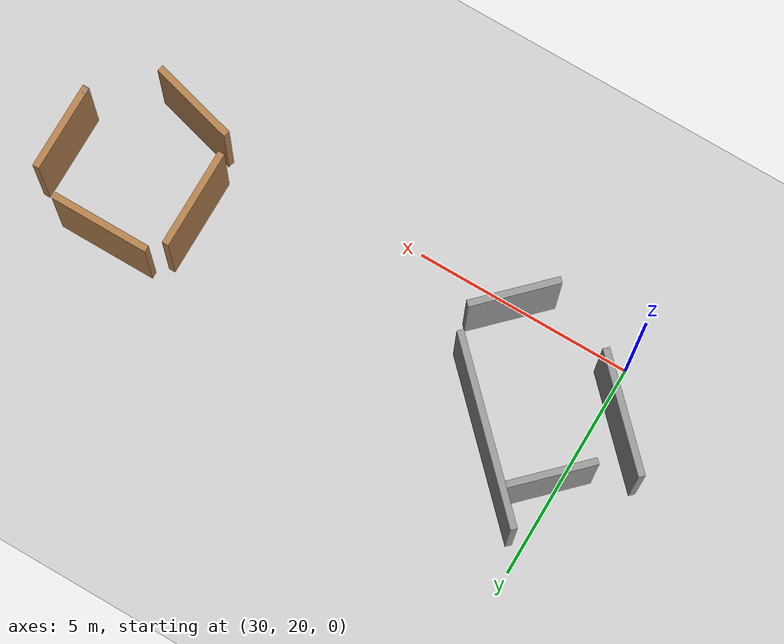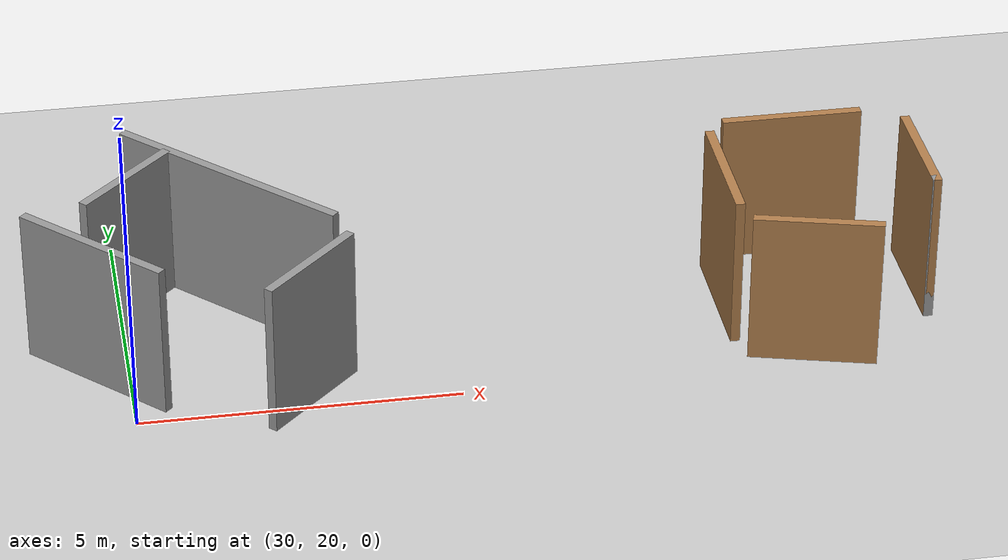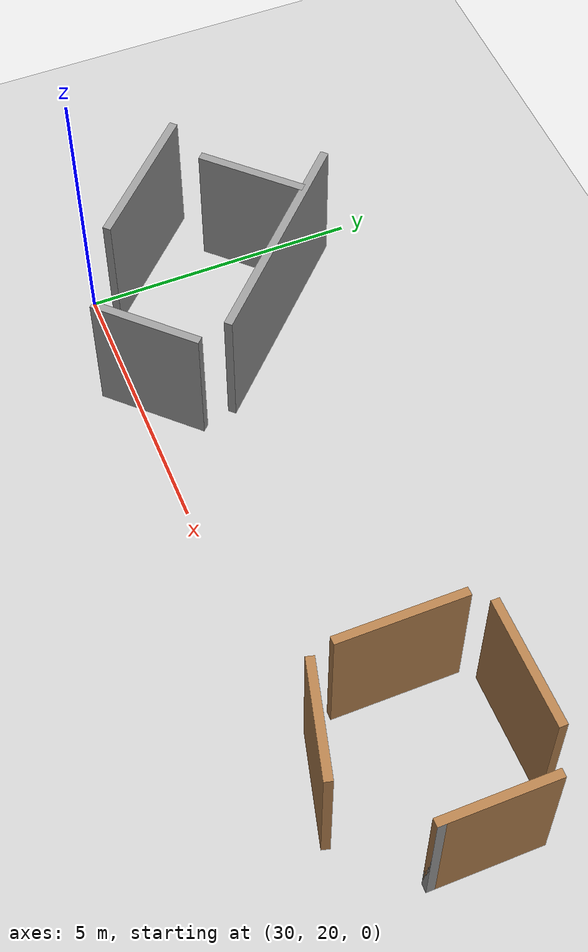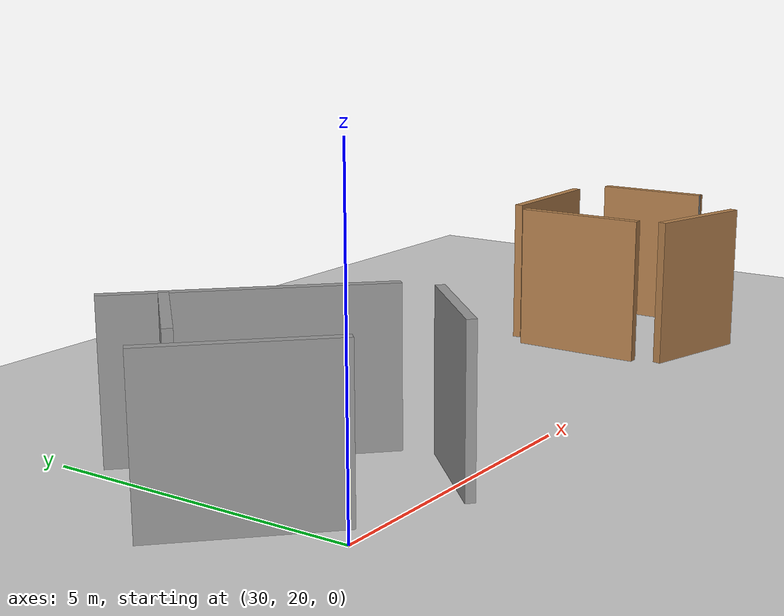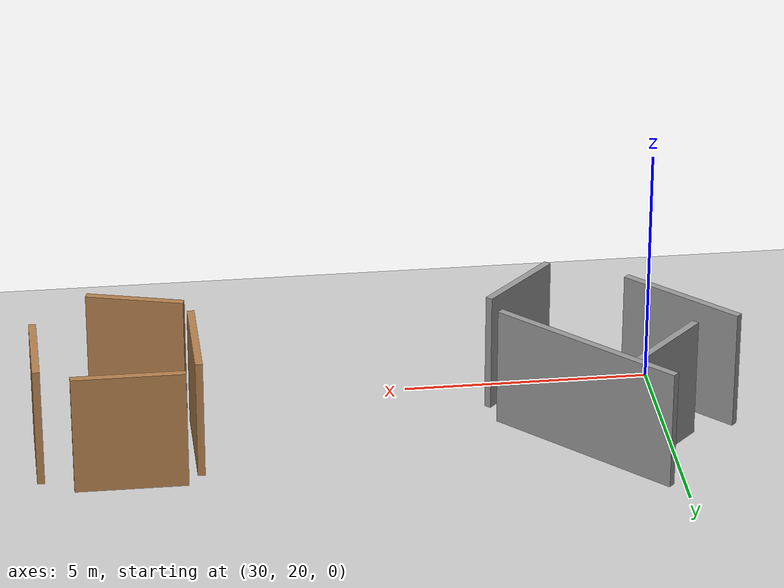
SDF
<sdf version="1.5">
 <world name="default">
  <model name="ground_plane">
   <static>1</static>
   <link name="link">
    <collision name="collision">
     <geometry><plane><normal>0 0 1</normal><size>100 100</size></plane></geometry>
     <surface><friction><ode><mu>100</mu><mu2>50</mu2></ode></friction></surface>
    </collision>
    <visual name="visual">
     <cast_shadows>0</cast_shadows>
     <geometry><plane><normal>0 0 1</normal><size>100 100</size></plane></geometry>
     <material>
      <script><uri>file://media/materials/scripts/gazebo.material</uri><name>Gazebo/Grey</name></script>
     </material>
    </visual>
   </link>
  </model>
  <model name="obs2_3">
   <pose>31 22 0 0 -0 0</pose>
   <link name="Wall_0">
    <collision name="Wall_0_Collision">
     <geometry><box><size>2 0.15 2.5</size></box></geometry>
     <pose>0 0 1.25 0 -0 0</pose>
    </collision>
    <visual name="Wall_0_Visual">
     <pose>0 0 1.25 0 -0 0</pose>
     <geometry><box><size>2 0.15 2.5</size></box></geometry>
     <material>
      <script><uri>file://media/materials/scripts/gazebo.material</uri><name>Gazebo/Grey</name></script>
      <ambient>1 1 1 1</ambient>
     </material>
    </visual>
    <pose>-0.796332 1.10862 0 0 -0 0.785398</pose>
   </link>
   <link name="Wall_2">
    <collision name="Wall_2_Collision">
     <geometry><box><size>4.25 0.15 2.5</size></box></geometry>
     <pose>0 0 1.25 0 -0 0</pose>
    </collision>
    <visual name="Wall_2_Visual">
     <pose>0 0 1.25 0 -0 0</pose>
     <geometry><box><size>4.25 0.15 2.5</size></box></geometry>
     <material>
      <script><uri>file://media/materials/scripts/gazebo.material</uri><name>Gazebo/Grey</name></script>
      <ambient>1 1 1 1</ambient>
     </material>
    </visual>
    <pose>0.773928 0.982661 0 0 0 -0.785398</pose>
   </link>
   <link name="Wall_4">
    <collision name="Wall_4_Collision">
     <geometry><box><size>2.75 0.15 2.5</size></box></geometry>
     <pose>0 0 1.25 0 -0 0</pose>
    </collision>
    <visual name="Wall_4_Visual">
     <pose>0 0 1.25 0 -0 0</pose>
     <geometry><box><size>2.75 0.15 2.5</size></box></geometry>
     <material>
      <script><uri>file://media/materials/scripts/gazebo.material</uri><name>Gazebo/Grey</name></script>
      <ambient>1 1 1 1</ambient>
     </material>
    </visual>
    <pose>-1.45556 -0.740711 0 0 0 -0.785398</pose>
   </link>
   <link name="Wall_6">
    <collision name="Wall_6_Collision">
     <geometry><box><size>2 0.15 2.5</size></box></geometry>
     <pose>0 0 1.25 0 -0 0</pose>
    </collision>
    <visual name="Wall_6_Visual">
     <pose>0 0 1.25 0 -0 0</pose>
     <geometry><box><size>2 0.15 2.5</size></box></geometry>
     <material>
      <script><uri>file://media/materials/scripts/gazebo.material</uri><name>Gazebo/Grey</name></script>
      <ambient>1 1 1 1</ambient>
     </material>
    </visual>
    <pose>1.72073 -1.77816 0 0 -0 0.785398</pose>
   </link>
   <static>1</static>
  </model>
  <model name="obs1_4">
   <pose>41 21.5671 0 0 -0 0</pose>
   <link name="Wall_10">
    <collision name="Wall_10_Collision">
     <geometry><box><size>2 0.15 2.5</size></box></geometry>
     <pose>0 0 1.25 0 -0 0</pose>
    </collision>
    <visual name="Wall_10_Visual">
     <pose>0 0 1.25 0 -0 0</pose>
     <geometry><box><size>2 0.15 2.5</size></box></geometry>
     <material>
      <script><uri>file://media/materials/scripts/gazebo.material</uri><name>Gazebo/Wood</name></script>
      <ambient>1 1 1 1</ambient>
     </material>
    </visual>
    <pose>-0.505188 -1.46687 0 0 0 -0.261799</pose>
   </link>
   <link name="Wall_2">
    <collision name="Wall_2_Collision">
     <geometry><box><size>2.25 0.15 2.5</size></box></geometry>
     <pose>0 0 1.25 0 -0 0</pose>
    </collision>
    <visual name="Wall_2_Visual">
     <pose>0 0 1.25 0 -0 0</pose>
     <geometry><box><size>2.25 0.15 2.5</size></box></geometry>
     <material>
      <script><uri>file://media/materials/scripts/gazebo.material</uri><name>Gazebo/Wood</name></script>
      <ambient>1 1 1 1</ambient>
     </material>
    </visual>
    <pose>-1.58039 0.313508 0 0 0 -1.5708</pose>
   </link>
   <link name="Wall_5">
    <collision name="Wall_5_Collision">
     <geometry><box><size>2.25 0.15 2.5</size></box></geometry>
     <pose>0 0 1.25 0 -0 0</pose>
    </collision>
    <visual name="Wall_5_Visual">
     <pose>0 0 1.25 0 -0 0</pose>
     <geometry><box><size>2.25 0.15 2.5</size></box></geometry>
     <material>
      <script><uri>file://media/materials/scripts/gazebo.material</uri><name>Gazebo/Wood</name></script>
      <ambient>1 1 1 1</ambient>
     </material>
    </visual>
    <pose>-0.185262 1.72313 0 0 -0 0</pose>
   </link>
   <link name="Wall_7">
    <collision name="Wall_7_Collision">
     <geometry><box><size>2 0.15 2.5</size></box></geometry>
     <pose>0 0 1.25 0 -0 0</pose>
    </collision>
    <visual name="Wall_7_Visual">
     <pose>0 0 1.25 0 -0 0</pose>
     <geometry><box><size>2 0.15 2.5</size></box></geometry>
     <material>
      <script><uri>file://media/materials/scripts/gazebo.material</uri><name>Gazebo/Wood</name></script>
      <ambient>1 1 1 1</ambient>
     </material>
    </visual>
    <pose>1.58039 0.398833 0 0 0 -1.5708</pose>
   </link>
   <link name="Wall_8">
    <collision name="Wall_8_Collision">
     <geometry><box><size>0.15 0.15 2.5</size></box></geometry>
     <pose>0 0 1.25 0 -0 0</pose>
    </collision>
    <visual name="Wall_8_Visual">
     <pose>0 0 1.25 0 -0 0</pose>
     <geometry><box><size>0.15 0.15 2.5</size></box></geometry>
     <material>
      <script><uri>file://media/materials/scripts/gazebo.material</uri><name>Gazebo/Grey</name></script>
      <ambient>1 1 1 1</ambient>
     </material>
    </visual>
    <pose>1.58039 -0.526167 0 0 -0 0</pose>
   </link>
   <static>1</static>
  </model>
 </world>
</sdf>
